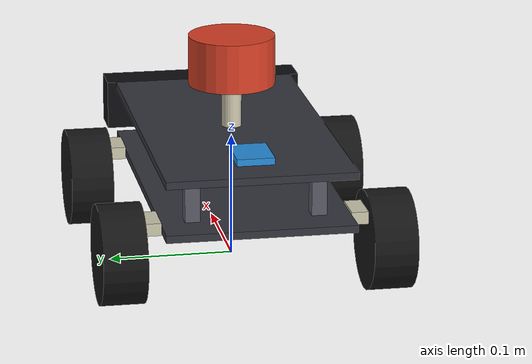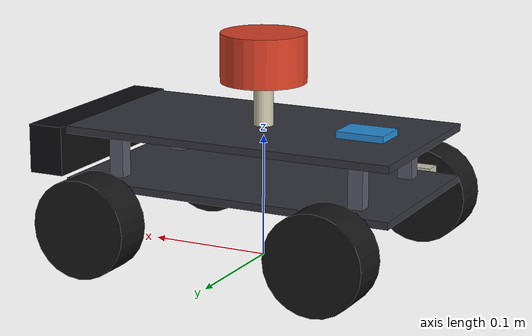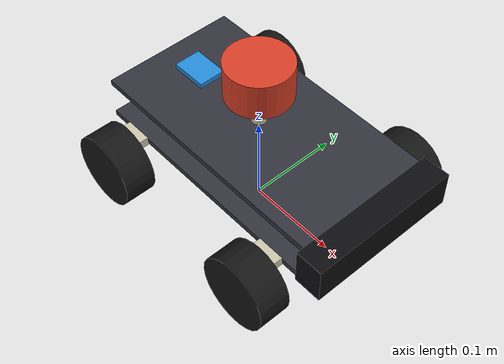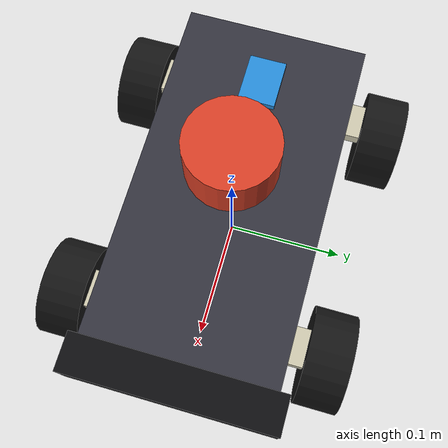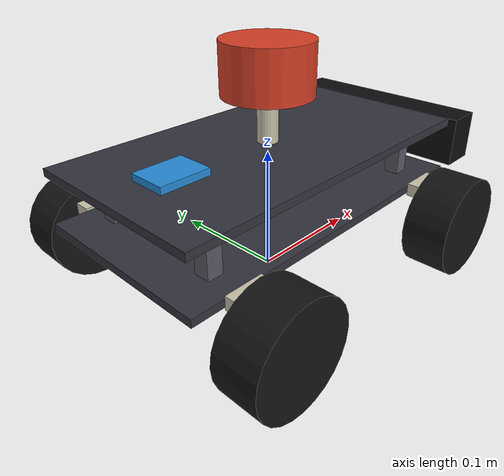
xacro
<?xml version="1.0"?>
<robot xmlns:xacro="http://www.ros.org/wiki/xacro" name="mecanum_car">
  <!--
    第二版结构增强：
    - 车体拆成上下板，视觉上不再是一整块实心盒子
    - 四个轮子补下吊支架
    - 雷达补安装立柱
    - 仍然保持最小可用，不在这里硬卷真实机械细节
  -->

  <!-- 车体主体尺寸 -->
  <xacro:property name="body_length" value="0.280"/>
  <xacro:property name="body_width" value="0.150"/>
  <xacro:property name="body_height" value="0.049"/>

  <!-- 车体安装高度：base_link 放在车体几何中心 -->
  <xacro:property name="ground_to_body_bottom" value="0.060"/>
  <xacro:property name="base_link_z" value="${ground_to_body_bottom + body_height / 2.0}"/>

  <!-- 上下板与支撑结构参数 -->
  <xacro:property name="plate_thickness" value="0.006"/>
  <xacro:property name="plate_gap" value="${body_height - 2.0 * plate_thickness}"/>
  <xacro:property name="top_plate_z" value="${body_height / 2.0 - plate_thickness / 2.0}"/>
  <xacro:property name="bottom_plate_z" value="${-body_height / 2.0 + plate_thickness / 2.0}"/>
  <xacro:property name="column_size" value="0.012"/>
  <xacro:property name="column_x" value="0.105"/>
  <xacro:property name="column_y" value="0.050"/>

  <!-- 轮子参数 -->
  <xacro:property name="wheel_radius" value="0.040"/>
  <xacro:property name="wheel_width" value="0.035"/>
  <xacro:property name="wheel_track" value="0.212"/>
  <xacro:property name="wheel_base" value="0.200"/>
  <xacro:property name="wheel_x" value="${wheel_base / 2.0}"/>
  <xacro:property name="wheel_y" value="${wheel_track / 2.0}"/>
  <xacro:property name="wheel_center_z" value="${wheel_radius - base_link_z}"/>

  <!-- 下吊支架参数 -->
  <xacro:property name="hanger_x_size" value="0.018"/>
  <xacro:property name="hanger_y_size" value="0.014"/>
  <xacro:property name="hanger_drop" value="${bottom_plate_z - wheel_center_z}"/>
  <xacro:property name="hanger_center_z" value="${(bottom_plate_z + wheel_center_z) / 2.0}"/>
  <xacro:property name="outrigger_y_size" value="${wheel_y - body_width / 2.0}"/>
  <xacro:property name="outrigger_x_size" value="0.030"/>
  <xacro:property name="outrigger_z_size" value="0.010"/>
  <xacro:property name="outrigger_center_y" value="${outrigger_y_size / 2.0}"/>

  <!-- 传感器参数 -->
  <xacro:property name="imu_x" value="-0.090"/>
  <xacro:property name="imu_y" value="0.0"/>
  <xacro:property name="imu_z" value="0.025"/>

  <!-- 当前实装：C1 安装在 base_link 正上方，底部离地约 0.18m；
       按总高 41.3mm 和扫描窗近中上部估算，扫描平面离地约 0.204m。
       base_link 几何中心离地约 0.0845m，因此这里先把 laser_link 挂到 z≈0.120m。
       目前实物前后反装，先用 yaw=pi 修正朝向。 -->
  <xacro:property name="laser_x" value="0.000"/>
  <xacro:property name="laser_y" value="0.000"/>
  <xacro:property name="laser_z" value="0.080"/>
  <xacro:property name="laser_radius" value="0.035"/>
  <xacro:property name="laser_height" value="0.040"/>
  <xacro:property name="laser_pole_radius" value="0.008"/>
  <xacro:property name="laser_pole_height" value="${laser_z - top_plate_z - laser_height / 2.0}"/>
  <xacro:property name="laser_pole_center_z" value="${top_plate_z + laser_pole_height / 2.0}"/>

  <material name="mat_body_dark">
    <color rgba="0.20 0.20 0.24 1.0"/>
  </material>
  <material name="mat_body_light">
    <color rgba="0.35 0.35 0.40 1.0"/>
  </material>
  <material name="mat_wheel">
    <color rgba="0.08 0.08 0.08 1.0"/>
  </material>
  <material name="mat_sensor">
    <color rgba="0.15 0.55 0.85 1.0"/>
  </material>
  <material name="mat_laser">
    <color rgba="0.85 0.25 0.15 1.0"/>
  </material>
  <material name="mat_support">
    <color rgba="0.80 0.78 0.68 1.0"/>
  </material>
  <!-- 相机参数：Astra Pro 当前装在车头，后侧紧贴车体前缘，顶部与上车板上表面齐平。
       这里先按外壳近似尺寸建模，重点是把 camera_link / optical frame 挂进 TF。 -->
  <xacro:property name="camera_x_size" value="0.030"/>
  <xacro:property name="camera_y_size" value="0.165"/>
  <xacro:property name="camera_z_size" value="0.040"/>
  <xacro:property name="camera_x" value="${body_length / 2.0 + camera_x_size / 2.0}"/>
  <xacro:property name="camera_y" value="0.0"/>
  <xacro:property name="camera_z" value="${body_height / 2.0 - camera_z_size / 2.0}"/>
  <xacro:property name="camera_optical_x" value="${camera_x_size / 2.0}"/>

  <material name="mat_camera">
    <color rgba="0.05 0.05 0.06 1.0"/>
  </material>

  <link name="base_footprint"/>

  <joint name="base_footprint_to_base_link" type="fixed">
    <parent link="base_footprint"/>
    <child link="base_link"/>
    <origin xyz="0 0 ${base_link_z}" rpy="0 0 0"/>
  </joint>

  <link name="base_link">
    <!--
      base_link 仍然作为车体主参考系，但视觉不再用单一大盒子，
      改为上下板 + 四个立柱，便于看出真实结构层次。
    -->
    <visual>
      <origin xyz="0 0 ${top_plate_z}" rpy="0 0 0"/>
      <geometry>
        <box size="${body_length} ${body_width} ${plate_thickness}"/>
      </geometry>
      <material name="mat_body_dark"/>
    </visual>
    <visual>
      <origin xyz="0 0 ${bottom_plate_z}" rpy="0 0 0"/>
      <geometry>
        <box size="${body_length} ${body_width} ${plate_thickness}"/>
      </geometry>
      <material name="mat_body_dark"/>
    </visual>
    <visual>
      <origin xyz="${column_x} ${column_y} 0" rpy="0 0 0"/>
      <geometry>
        <box size="${column_size} ${column_size} ${plate_gap}"/>
      </geometry>
      <material name="mat_body_light"/>
    </visual>
    <visual>
      <origin xyz="${column_x} ${-column_y} 0" rpy="0 0 0"/>
      <geometry>
        <box size="${column_size} ${column_size} ${plate_gap}"/>
      </geometry>
      <material name="mat_body_light"/>
    </visual>
    <visual>
      <origin xyz="${-column_x} ${column_y} 0" rpy="0 0 0"/>
      <geometry>
        <box size="${column_size} ${column_size} ${plate_gap}"/>
      </geometry>
      <material name="mat_body_light"/>
    </visual>
    <visual>
      <origin xyz="${-column_x} ${-column_y} 0" rpy="0 0 0"/>
      <geometry>
        <box size="${column_size} ${column_size} ${plate_gap}"/>
      </geometry>
      <material name="mat_body_light"/>
    </visual>

    <!-- 碰撞先仍然收敛成一个简化盒体，够导航和调 TF 用 -->
    <collision>
      <origin xyz="0 0 0" rpy="0 0 0"/>
      <geometry>
        <box size="${body_length} ${body_width} ${body_height}"/>
      </geometry>
    </collision>
    <inertial>
      <origin xyz="0 0 0" rpy="0 0 0"/>
      <mass value="2.0"/>
      <inertia ixx="0.02" ixy="0.0" ixz="0.0" iyy="0.03" iyz="0.0" izz="0.04"/>
    </inertial>
  </link>

  <xacro:macro name="wheel_link" params="name">
    <link name="${name}">
      <visual>
        <origin xyz="0 0 0" rpy="1.57079632679 0 0"/>
        <geometry>
          <cylinder radius="${wheel_radius}" length="${wheel_width}"/>
        </geometry>
        <material name="mat_wheel"/>
      </visual>
      <collision>
        <origin xyz="0 0 0" rpy="1.57079632679 0 0"/>
        <geometry>
          <cylinder radius="${wheel_radius}" length="${wheel_width}"/>
        </geometry>
      </collision>
      <inertial>
        <origin xyz="0 0 0" rpy="0 0 0"/>
        <mass value="0.25"/>
        <inertia ixx="0.0005" ixy="0.0" ixz="0.0" iyy="0.0005" iyz="0.0" izz="0.0003"/>
      </inertial>
    </link>
  </xacro:macro>

  <xacro:macro name="wheel_hanger" params="name x y side_sign">
    <link name="${name}">
      <!-- 横向外伸连接块：把车体边缘和下吊支架真正接起来 -->
      <visual>
        <origin xyz="0 ${side_sign * outrigger_center_y} ${bottom_plate_z}" rpy="0 0 0"/>
        <geometry>
          <box size="${outrigger_x_size} ${outrigger_y_size} ${outrigger_z_size}"/>
        </geometry>
        <material name="mat_support"/>
      </visual>
      <!-- 竖向下吊支架，贴在横向连接块外侧末端 -->
      <visual>
        <origin xyz="0 ${side_sign * (outrigger_y_size + hanger_y_size) / 2.0} ${hanger_center_z}" rpy="0 0 0"/>
        <geometry>
          <box size="${hanger_x_size} ${hanger_y_size} ${hanger_drop}"/>
        </geometry>
        <material name="mat_support"/>
      </visual>
    </link>
    <joint name="${name}_joint" type="fixed">
      <parent link="base_link"/>
      <child link="${name}"/>
      <origin xyz="${x} ${side_sign * body_width / 2.0} 0" rpy="0 0 0"/>
    </joint>
  </xacro:macro>

  <xacro:wheel_link name="front_left_wheel_link"/>
  <xacro:wheel_link name="front_right_wheel_link"/>
  <xacro:wheel_link name="rear_left_wheel_link"/>
  <xacro:wheel_link name="rear_right_wheel_link"/>

  <xacro:wheel_hanger name="front_left_hanger_link" x="${wheel_x}" y="${wheel_y}" side_sign="1"/>
  <xacro:wheel_hanger name="front_right_hanger_link" x="${wheel_x}" y="${-wheel_y}" side_sign="-1"/>
  <xacro:wheel_hanger name="rear_left_hanger_link" x="${-wheel_x}" y="${wheel_y}" side_sign="1"/>
  <xacro:wheel_hanger name="rear_right_hanger_link" x="${-wheel_x}" y="${-wheel_y}" side_sign="-1"/>

  <joint name="front_left_wheel_joint" type="fixed">
    <parent link="base_link"/>
    <child link="front_left_wheel_link"/>
    <origin xyz="${wheel_x} ${wheel_y} ${wheel_center_z}" rpy="0 0 0"/>
  </joint>

  <joint name="front_right_wheel_joint" type="fixed">
    <parent link="base_link"/>
    <child link="front_right_wheel_link"/>
    <origin xyz="${wheel_x} ${-wheel_y} ${wheel_center_z}" rpy="0 0 0"/>
  </joint>

  <joint name="rear_left_wheel_joint" type="fixed">
    <parent link="base_link"/>
    <child link="rear_left_wheel_link"/>
    <origin xyz="${-wheel_x} ${wheel_y} ${wheel_center_z}" rpy="0 0 0"/>
  </joint>

  <joint name="rear_right_wheel_joint" type="fixed">
    <parent link="base_link"/>
    <child link="rear_right_wheel_link"/>
    <origin xyz="${-wheel_x} ${-wheel_y} ${wheel_center_z}" rpy="0 0 0"/>
  </joint>

  <link name="imu_link">
    <visual>
      <geometry>
        <box size="0.040 0.030 0.010"/>
      </geometry>
      <material name="mat_sensor"/>
    </visual>
  </link>

  <joint name="imu_joint" type="fixed">
    <parent link="base_link"/>
    <child link="imu_link"/>
    <origin xyz="${imu_x} ${imu_y} ${imu_z}" rpy="0 0 0"/>
  </joint>

  <link name="laser_pole_link">
    <visual>
      <origin xyz="0 0 0" rpy="0 0 0"/>
      <geometry>
        <cylinder radius="${laser_pole_radius}" length="${laser_pole_height}"/>
      </geometry>
      <material name="mat_support"/>
    </visual>
  </link>

  <joint name="laser_pole_joint" type="fixed">
    <parent link="base_link"/>
    <child link="laser_pole_link"/>
    <origin xyz="${laser_x} ${laser_y} ${laser_pole_center_z}" rpy="0 0 0"/>
  </joint>

  <link name="laser_link">
    <visual>
      <origin xyz="0 0 0" rpy="0 0 0"/>
      <geometry>
        <cylinder radius="${laser_radius}" length="${laser_height}"/>
      </geometry>
      <material name="mat_laser"/>
    </visual>
  </link>

  <joint name="laser_joint" type="fixed">
    <parent link="base_link"/>
    <child link="laser_link"/>
    <origin xyz="${laser_x} ${laser_y} ${laser_z}" rpy="0 0 3.14159265359"/>
  </joint>

  <link name="camera_link">
    <visual>
      <origin xyz="0 0 0" rpy="0 0 0"/>
      <geometry>
        <box size="${camera_x_size} ${camera_y_size} ${camera_z_size}"/>
      </geometry>
      <material name="mat_camera"/>
    </visual>
    <collision>
      <origin xyz="0 0 0" rpy="0 0 0"/>
      <geometry>
        <box size="${camera_x_size} ${camera_y_size} ${camera_z_size}"/>
      </geometry>
    </collision>
  </link>

  <joint name="camera_joint" type="fixed">
    <parent link="base_link"/>
    <child link="camera_link"/>
    <origin xyz="${camera_x} ${camera_y} ${camera_z}" rpy="0 0 0"/>
  </joint>

  <!-- Orbbec 常用帧：深度和彩色帧从 camera_link 展开，optical frame 遵循 REP-103：z 向前，x 向右，y 向下。 -->
  <link name="camera_depth_frame"/>
  <joint name="camera_depth_joint" type="fixed">
    <parent link="camera_link"/>
    <child link="camera_depth_frame"/>
    <origin xyz="${camera_optical_x} 0 0" rpy="0 0 0"/>
  </joint>

  <link name="camera_depth_optical_frame"/>
  <joint name="camera_depth_optical_joint" type="fixed">
    <parent link="camera_depth_frame"/>
    <child link="camera_depth_optical_frame"/>
    <origin xyz="0 0 0" rpy="-1.57079632679 0 -1.57079632679"/>
  </joint>

  <link name="camera_color_frame"/>
  <joint name="camera_color_joint" type="fixed">
    <parent link="camera_link"/>
    <child link="camera_color_frame"/>
    <origin xyz="${camera_optical_x} 0 0" rpy="0 0 0"/>
  </joint>

  <link name="camera_color_optical_frame"/>
  <joint name="camera_color_optical_joint" type="fixed">
    <parent link="camera_color_frame"/>
    <child link="camera_color_optical_frame"/>
    <origin xyz="0 0 0" rpy="-1.57079632679 0 -1.57079632679"/>
  </joint>
</robot>
